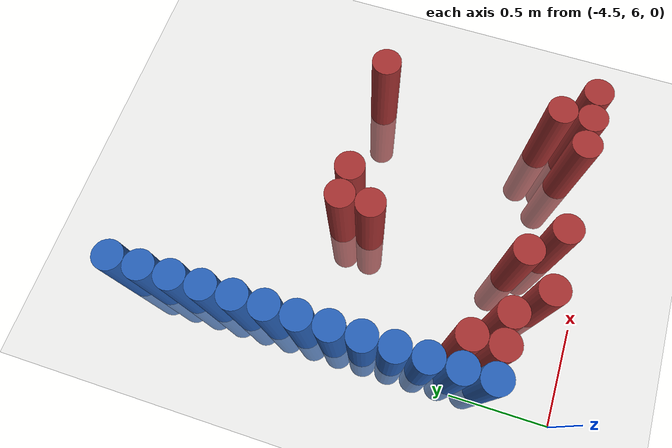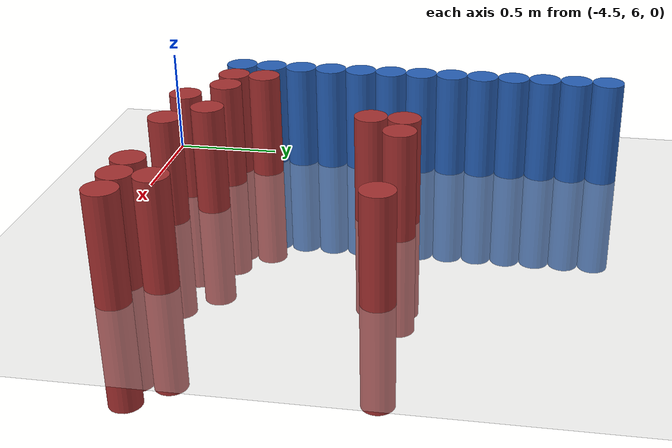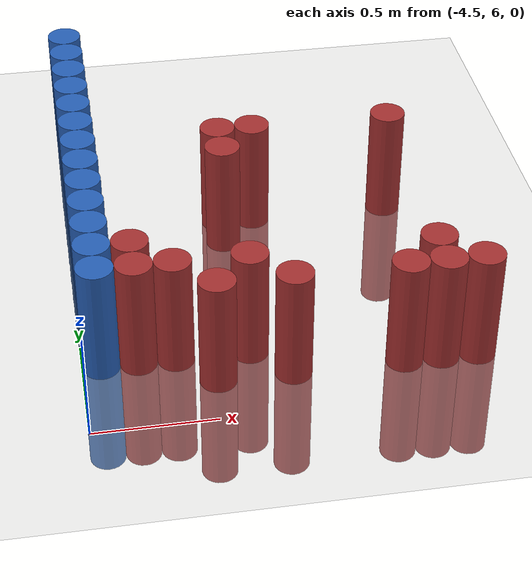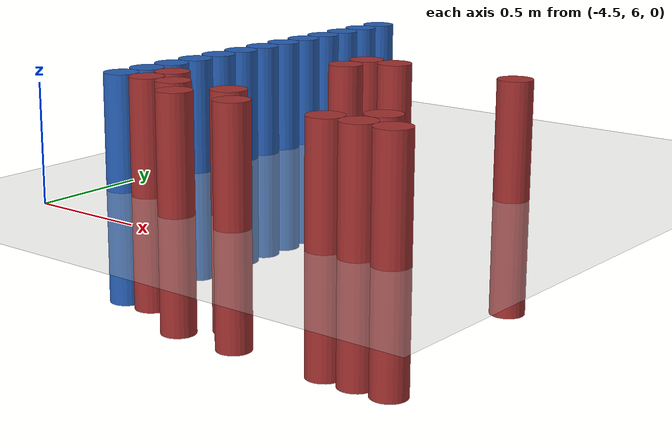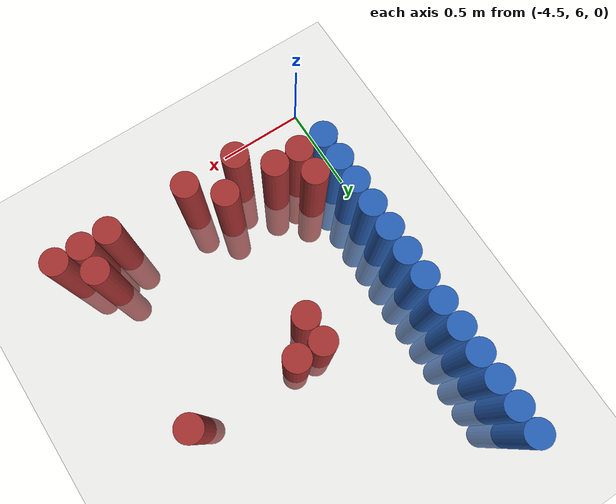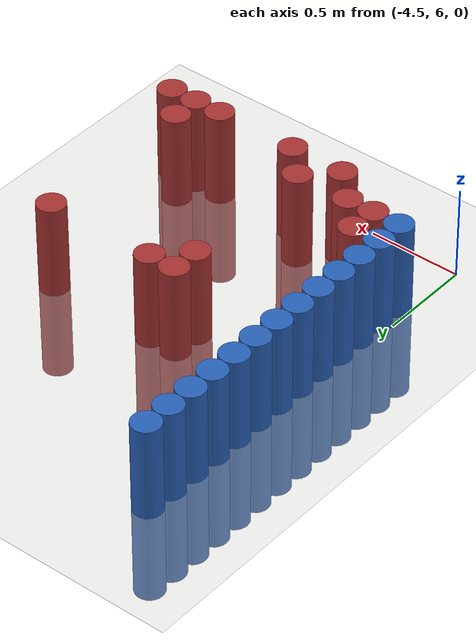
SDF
<sdf version="1.6">
 <world name="world_194">
  <model name="ground_plane">
   <static>1</static>
   <link name="link">
    <collision name="collision">
     <geometry><plane><normal>0 0 1</normal><size>100 100</size></plane></geometry>
     <surface><friction><ode><mu>100</mu><mu2>50</mu2></ode></friction></surface>
    </collision>
    <visual name="visual">
     <cast_shadows>0</cast_shadows>
     <geometry><plane><normal>0 0 1</normal><size>100 100</size></plane></geometry>
     <material>
      <script><uri>file://media/materials/scripts/gazebo.material</uri><name>Gazebo/Grey</name></script>
     </material>
    </visual>
   </link>
  </model>
  <model name="unit_cylinder_104">
   <static>1</static>
   <pose>-4.425000 6.375000 0.000000 0.000000 0.000000 0.000000</pose>
   <link name="link">
    <inertial>
     <mass>1</mass>
     <inertia><ixx>0.145833</ixx><ixy>0</ixy><ixz>0</ixz><iyy>0.145833</iyy><iyz>0</iyz><izz>0.125</izz></inertia>
    </inertial>
    <collision name="collision">
     <geometry><cylinder><radius>0.075000</radius><length>1</length></cylinder></geometry>
    </collision>
    <visual name="visual">
     <geometry><cylinder><radius>0.075000</radius><length>1</length></cylinder></geometry>
     <material>
      <ambient>0.152000 0.379000 0.720000 1</ambient>
      <diffuse>0.152000 0.379000 0.720000 1</diffuse>
     </material>
     <material>
      <script><name>Gazebo/Grey</name><uri>file://media/materials/scripts/gazebo.material</uri></script>
     </material>
    </visual>
   </link>
  </model>
  <model name="unit_cylinder_105">
   <static>1</static>
   <pose>-4.425000 6.525000 0.000000 0.000000 0.000000 0.000000</pose>
   <link name="link">
    <inertial>
     <mass>1</mass>
     <inertia><ixx>0.145833</ixx><ixy>0</ixy><ixz>0</ixz><iyy>0.145833</iyy><iyz>0</iyz><izz>0.125</izz></inertia>
    </inertial>
    <collision name="collision">
     <geometry><cylinder><radius>0.075000</radius><length>1</length></cylinder></geometry>
    </collision>
    <visual name="visual">
     <geometry><cylinder><radius>0.075000</radius><length>1</length></cylinder></geometry>
     <material>
      <ambient>0.152000 0.379000 0.720000 1</ambient>
      <diffuse>0.152000 0.379000 0.720000 1</diffuse>
     </material>
     <material>
      <script><name>Gazebo/Grey</name><uri>file://media/materials/scripts/gazebo.material</uri></script>
     </material>
    </visual>
   </link>
  </model>
  <model name="unit_cylinder_106">
   <static>1</static>
   <pose>-4.425000 6.675000 0.000000 0.000000 0.000000 0.000000</pose>
   <link name="link">
    <inertial>
     <mass>1</mass>
     <inertia><ixx>0.145833</ixx><ixy>0</ixy><ixz>0</ixz><iyy>0.145833</iyy><iyz>0</iyz><izz>0.125</izz></inertia>
    </inertial>
    <collision name="collision">
     <geometry><cylinder><radius>0.075000</radius><length>1</length></cylinder></geometry>
    </collision>
    <visual name="visual">
     <geometry><cylinder><radius>0.075000</radius><length>1</length></cylinder></geometry>
     <material>
      <ambient>0.152000 0.379000 0.720000 1</ambient>
      <diffuse>0.152000 0.379000 0.720000 1</diffuse>
     </material>
     <material>
      <script><name>Gazebo/Grey</name><uri>file://media/materials/scripts/gazebo.material</uri></script>
     </material>
    </visual>
   </link>
  </model>
  <model name="unit_cylinder_107">
   <static>1</static>
   <pose>-4.425000 6.825000 0.000000 0.000000 0.000000 0.000000</pose>
   <link name="link">
    <inertial>
     <mass>1</mass>
     <inertia><ixx>0.145833</ixx><ixy>0</ixy><ixz>0</ixz><iyy>0.145833</iyy><iyz>0</iyz><izz>0.125</izz></inertia>
    </inertial>
    <collision name="collision">
     <geometry><cylinder><radius>0.075000</radius><length>1</length></cylinder></geometry>
    </collision>
    <visual name="visual">
     <geometry><cylinder><radius>0.075000</radius><length>1</length></cylinder></geometry>
     <material>
      <ambient>0.152000 0.379000 0.720000 1</ambient>
      <diffuse>0.152000 0.379000 0.720000 1</diffuse>
     </material>
     <material>
      <script><name>Gazebo/Grey</name><uri>file://media/materials/scripts/gazebo.material</uri></script>
     </material>
    </visual>
   </link>
  </model>
  <model name="unit_cylinder_108">
   <static>1</static>
   <pose>-4.425000 6.975000 0.000000 0.000000 0.000000 0.000000</pose>
   <link name="link">
    <inertial>
     <mass>1</mass>
     <inertia><ixx>0.145833</ixx><ixy>0</ixy><ixz>0</ixz><iyy>0.145833</iyy><iyz>0</iyz><izz>0.125</izz></inertia>
    </inertial>
    <collision name="collision">
     <geometry><cylinder><radius>0.075000</radius><length>1</length></cylinder></geometry>
    </collision>
    <visual name="visual">
     <geometry><cylinder><radius>0.075000</radius><length>1</length></cylinder></geometry>
     <material>
      <ambient>0.152000 0.379000 0.720000 1</ambient>
      <diffuse>0.152000 0.379000 0.720000 1</diffuse>
     </material>
     <material>
      <script><name>Gazebo/Grey</name><uri>file://media/materials/scripts/gazebo.material</uri></script>
     </material>
    </visual>
   </link>
  </model>
  <model name="unit_cylinder_109">
   <static>1</static>
   <pose>-4.425000 7.125000 0.000000 0.000000 0.000000 0.000000</pose>
   <link name="link">
    <inertial>
     <mass>1</mass>
     <inertia><ixx>0.145833</ixx><ixy>0</ixy><ixz>0</ixz><iyy>0.145833</iyy><iyz>0</iyz><izz>0.125</izz></inertia>
    </inertial>
    <collision name="collision">
     <geometry><cylinder><radius>0.075000</radius><length>1</length></cylinder></geometry>
    </collision>
    <visual name="visual">
     <geometry><cylinder><radius>0.075000</radius><length>1</length></cylinder></geometry>
     <material>
      <ambient>0.152000 0.379000 0.720000 1</ambient>
      <diffuse>0.152000 0.379000 0.720000 1</diffuse>
     </material>
     <material>
      <script><name>Gazebo/Grey</name><uri>file://media/materials/scripts/gazebo.material</uri></script>
     </material>
    </visual>
   </link>
  </model>
  <model name="unit_cylinder_110">
   <static>1</static>
   <pose>-4.425000 7.275000 0.000000 0.000000 0.000000 0.000000</pose>
   <link name="link">
    <inertial>
     <mass>1</mass>
     <inertia><ixx>0.145833</ixx><ixy>0</ixy><ixz>0</ixz><iyy>0.145833</iyy><iyz>0</iyz><izz>0.125</izz></inertia>
    </inertial>
    <collision name="collision">
     <geometry><cylinder><radius>0.075000</radius><length>1</length></cylinder></geometry>
    </collision>
    <visual name="visual">
     <geometry><cylinder><radius>0.075000</radius><length>1</length></cylinder></geometry>
     <material>
      <ambient>0.152000 0.379000 0.720000 1</ambient>
      <diffuse>0.152000 0.379000 0.720000 1</diffuse>
     </material>
     <material>
      <script><name>Gazebo/Grey</name><uri>file://media/materials/scripts/gazebo.material</uri></script>
     </material>
    </visual>
   </link>
  </model>
  <model name="unit_cylinder_111">
   <static>1</static>
   <pose>-4.425000 7.425000 0.000000 0.000000 0.000000 0.000000</pose>
   <link name="link">
    <inertial>
     <mass>1</mass>
     <inertia><ixx>0.145833</ixx><ixy>0</ixy><ixz>0</ixz><iyy>0.145833</iyy><iyz>0</iyz><izz>0.125</izz></inertia>
    </inertial>
    <collision name="collision">
     <geometry><cylinder><radius>0.075000</radius><length>1</length></cylinder></geometry>
    </collision>
    <visual name="visual">
     <geometry><cylinder><radius>0.075000</radius><length>1</length></cylinder></geometry>
     <material>
      <ambient>0.152000 0.379000 0.720000 1</ambient>
      <diffuse>0.152000 0.379000 0.720000 1</diffuse>
     </material>
     <material>
      <script><name>Gazebo/Grey</name><uri>file://media/materials/scripts/gazebo.material</uri></script>
     </material>
    </visual>
   </link>
  </model>
  <model name="unit_cylinder_112">
   <static>1</static>
   <pose>-4.425000 7.575000 0.000000 0.000000 0.000000 0.000000</pose>
   <link name="link">
    <inertial>
     <mass>1</mass>
     <inertia><ixx>0.145833</ixx><ixy>0</ixy><ixz>0</ixz><iyy>0.145833</iyy><iyz>0</iyz><izz>0.125</izz></inertia>
    </inertial>
    <collision name="collision">
     <geometry><cylinder><radius>0.075000</radius><length>1</length></cylinder></geometry>
    </collision>
    <visual name="visual">
     <geometry><cylinder><radius>0.075000</radius><length>1</length></cylinder></geometry>
     <material>
      <ambient>0.152000 0.379000 0.720000 1</ambient>
      <diffuse>0.152000 0.379000 0.720000 1</diffuse>
     </material>
     <material>
      <script><name>Gazebo/Grey</name><uri>file://media/materials/scripts/gazebo.material</uri></script>
     </material>
    </visual>
   </link>
  </model>
  <model name="unit_cylinder_113">
   <static>1</static>
   <pose>-4.425000 7.725000 0.000000 0.000000 0.000000 0.000000</pose>
   <link name="link">
    <inertial>
     <mass>1</mass>
     <inertia><ixx>0.145833</ixx><ixy>0</ixy><ixz>0</ixz><iyy>0.145833</iyy><iyz>0</iyz><izz>0.125</izz></inertia>
    </inertial>
    <collision name="collision">
     <geometry><cylinder><radius>0.075000</radius><length>1</length></cylinder></geometry>
    </collision>
    <visual name="visual">
     <geometry><cylinder><radius>0.075000</radius><length>1</length></cylinder></geometry>
     <material>
      <ambient>0.152000 0.379000 0.720000 1</ambient>
      <diffuse>0.152000 0.379000 0.720000 1</diffuse>
     </material>
     <material>
      <script><name>Gazebo/Grey</name><uri>file://media/materials/scripts/gazebo.material</uri></script>
     </material>
    </visual>
   </link>
  </model>
  <model name="unit_cylinder_114">
   <static>1</static>
   <pose>-4.425000 7.875000 0.000000 0.000000 0.000000 0.000000</pose>
   <link name="link">
    <inertial>
     <mass>1</mass>
     <inertia><ixx>0.145833</ixx><ixy>0</ixy><ixz>0</ixz><iyy>0.145833</iyy><iyz>0</iyz><izz>0.125</izz></inertia>
    </inertial>
    <collision name="collision">
     <geometry><cylinder><radius>0.075000</radius><length>1</length></cylinder></geometry>
    </collision>
    <visual name="visual">
     <geometry><cylinder><radius>0.075000</radius><length>1</length></cylinder></geometry>
     <material>
      <ambient>0.152000 0.379000 0.720000 1</ambient>
      <diffuse>0.152000 0.379000 0.720000 1</diffuse>
     </material>
     <material>
      <script><name>Gazebo/Grey</name><uri>file://media/materials/scripts/gazebo.material</uri></script>
     </material>
    </visual>
   </link>
  </model>
  <model name="unit_cylinder_115">
   <static>1</static>
   <pose>-4.425000 8.025000 0.000000 0.000000 0.000000 0.000000</pose>
   <link name="link">
    <inertial>
     <mass>1</mass>
     <inertia><ixx>0.145833</ixx><ixy>0</ixy><ixz>0</ixz><iyy>0.145833</iyy><iyz>0</iyz><izz>0.125</izz></inertia>
    </inertial>
    <collision name="collision">
     <geometry><cylinder><radius>0.075000</radius><length>1</length></cylinder></geometry>
    </collision>
    <visual name="visual">
     <geometry><cylinder><radius>0.075000</radius><length>1</length></cylinder></geometry>
     <material>
      <ambient>0.152000 0.379000 0.720000 1</ambient>
      <diffuse>0.152000 0.379000 0.720000 1</diffuse>
     </material>
     <material>
      <script><name>Gazebo/Grey</name><uri>file://media/materials/scripts/gazebo.material</uri></script>
     </material>
    </visual>
   </link>
  </model>
  <model name="unit_cylinder_116">
   <static>1</static>
   <pose>-4.425000 8.175000 0.000000 0.000000 0.000000 0.000000</pose>
   <link name="link">
    <inertial>
     <mass>1</mass>
     <inertia><ixx>0.145833</ixx><ixy>0</ixy><ixz>0</ixz><iyy>0.145833</iyy><iyz>0</iyz><izz>0.125</izz></inertia>
    </inertial>
    <collision name="collision">
     <geometry><cylinder><radius>0.075000</radius><length>1</length></cylinder></geometry>
    </collision>
    <visual name="visual">
     <geometry><cylinder><radius>0.075000</radius><length>1</length></cylinder></geometry>
     <material>
      <ambient>0.152000 0.379000 0.720000 1</ambient>
      <diffuse>0.152000 0.379000 0.720000 1</diffuse>
     </material>
     <material>
      <script><name>Gazebo/Grey</name><uri>file://media/materials/scripts/gazebo.material</uri></script>
     </material>
    </visual>
   </link>
  </model>
  <model name="unit_cylinder_131">
   <static>1</static>
   <pose>-4.275000 6.375000 0.000000 0.000000 0.000000 0.000000</pose>
   <link name="link">
    <inertial>
     <mass>1</mass>
     <inertia><ixx>0.145833</ixx><ixy>0</ixy><ixz>0</ixz><iyy>0.145833</iyy><iyz>0</iyz><izz>0.125</izz></inertia>
    </inertial>
    <collision name="collision">
     <geometry><cylinder><radius>0.075000</radius><length>1</length></cylinder></geometry>
    </collision>
    <visual name="visual">
     <geometry><cylinder><radius>0.075000</radius><length>1</length></cylinder></geometry>
     <material>
      <ambient>0.648000 0.192000 0.192000 1</ambient>
      <diffuse>0.648000 0.192000 0.192000 1</diffuse>
     </material>
     <material>
      <script><name>Gazebo/Grey</name><uri>file://media/materials/scripts/gazebo.material</uri></script>
     </material>
    </visual>
   </link>
  </model>
  <model name="unit_cylinder_132">
   <static>1</static>
   <pose>-4.275000 6.525000 0.000000 0.000000 0.000000 0.000000</pose>
   <link name="link">
    <inertial>
     <mass>1</mass>
     <inertia><ixx>0.145833</ixx><ixy>0</ixy><ixz>0</ixz><iyy>0.145833</iyy><iyz>0</iyz><izz>0.125</izz></inertia>
    </inertial>
    <collision name="collision">
     <geometry><cylinder><radius>0.075000</radius><length>1</length></cylinder></geometry>
    </collision>
    <visual name="visual">
     <geometry><cylinder><radius>0.075000</radius><length>1</length></cylinder></geometry>
     <material>
      <ambient>0.648000 0.192000 0.192000 1</ambient>
      <diffuse>0.648000 0.192000 0.192000 1</diffuse>
     </material>
     <material>
      <script><name>Gazebo/Grey</name><uri>file://media/materials/scripts/gazebo.material</uri></script>
     </material>
    </visual>
   </link>
  </model>
  <model name="unit_cylinder_142">
   <static>1</static>
   <pose>-4.125000 6.375000 0.000000 0.000000 0.000000 0.000000</pose>
   <link name="link">
    <inertial>
     <mass>1</mass>
     <inertia><ixx>0.145833</ixx><ixy>0</ixy><ixz>0</ixz><iyy>0.145833</iyy><iyz>0</iyz><izz>0.125</izz></inertia>
    </inertial>
    <collision name="collision">
     <geometry><cylinder><radius>0.075000</radius><length>1</length></cylinder></geometry>
    </collision>
    <visual name="visual">
     <geometry><cylinder><radius>0.075000</radius><length>1</length></cylinder></geometry>
     <material>
      <ambient>0.648000 0.192000 0.192000 1</ambient>
      <diffuse>0.648000 0.192000 0.192000 1</diffuse>
     </material>
     <material>
      <script><name>Gazebo/Grey</name><uri>file://media/materials/scripts/gazebo.material</uri></script>
     </material>
    </visual>
   </link>
  </model>
  <model name="unit_cylinder_145">
   <static>1</static>
   <pose>-3.975000 6.225000 0.000000 0.000000 0.000000 0.000000</pose>
   <link name="link">
    <inertial>
     <mass>1</mass>
     <inertia><ixx>0.145833</ixx><ixy>0</ixy><ixz>0</ixz><iyy>0.145833</iyy><iyz>0</iyz><izz>0.125</izz></inertia>
    </inertial>
    <collision name="collision">
     <geometry><cylinder><radius>0.075000</radius><length>1</length></cylinder></geometry>
    </collision>
    <visual name="visual">
     <geometry><cylinder><radius>0.075000</radius><length>1</length></cylinder></geometry>
     <material>
      <ambient>0.648000 0.192000 0.192000 1</ambient>
      <diffuse>0.648000 0.192000 0.192000 1</diffuse>
     </material>
     <material>
      <script><name>Gazebo/Grey</name><uri>file://media/materials/scripts/gazebo.material</uri></script>
     </material>
    </visual>
   </link>
  </model>
  <model name="unit_cylinder_148">
   <static>1</static>
   <pose>-3.825000 6.375000 0.000000 0.000000 0.000000 0.000000</pose>
   <link name="link">
    <inertial>
     <mass>1</mass>
     <inertia><ixx>0.145833</ixx><ixy>0</ixy><ixz>0</ixz><iyy>0.145833</iyy><iyz>0</iyz><izz>0.125</izz></inertia>
    </inertial>
    <collision name="collision">
     <geometry><cylinder><radius>0.075000</radius><length>1</length></cylinder></geometry>
    </collision>
    <visual name="visual">
     <geometry><cylinder><radius>0.075000</radius><length>1</length></cylinder></geometry>
     <material>
      <ambient>0.648000 0.192000 0.192000 1</ambient>
      <diffuse>0.648000 0.192000 0.192000 1</diffuse>
     </material>
     <material>
      <script><name>Gazebo/Grey</name><uri>file://media/materials/scripts/gazebo.material</uri></script>
     </material>
    </visual>
   </link>
  </model>
  <model name="unit_cylinder_149">
   <static>1</static>
   <pose>-3.825000 7.125000 0.000000 0.000000 0.000000 0.000000</pose>
   <link name="link">
    <inertial>
     <mass>1</mass>
     <inertia><ixx>0.145833</ixx><ixy>0</ixy><ixz>0</ixz><iyy>0.145833</iyy><iyz>0</iyz><izz>0.125</izz></inertia>
    </inertial>
    <collision name="collision">
     <geometry><cylinder><radius>0.075000</radius><length>1</length></cylinder></geometry>
    </collision>
    <visual name="visual">
     <geometry><cylinder><radius>0.075000</radius><length>1</length></cylinder></geometry>
     <material>
      <ambient>0.648000 0.192000 0.192000 1</ambient>
      <diffuse>0.648000 0.192000 0.192000 1</diffuse>
     </material>
     <material>
      <script><name>Gazebo/Grey</name><uri>file://media/materials/scripts/gazebo.material</uri></script>
     </material>
    </visual>
   </link>
  </model>
  <model name="unit_cylinder_150">
   <static>1</static>
   <pose>-3.825000 7.275000 0.000000 0.000000 0.000000 0.000000</pose>
   <link name="link">
    <inertial>
     <mass>1</mass>
     <inertia><ixx>0.145833</ixx><ixy>0</ixy><ixz>0</ixz><iyy>0.145833</iyy><iyz>0</iyz><izz>0.125</izz></inertia>
    </inertial>
    <collision name="collision">
     <geometry><cylinder><radius>0.075000</radius><length>1</length></cylinder></geometry>
    </collision>
    <visual name="visual">
     <geometry><cylinder><radius>0.075000</radius><length>1</length></cylinder></geometry>
     <material>
      <ambient>0.648000 0.192000 0.192000 1</ambient>
      <diffuse>0.648000 0.192000 0.192000 1</diffuse>
     </material>
     <material>
      <script><name>Gazebo/Grey</name><uri>file://media/materials/scripts/gazebo.material</uri></script>
     </material>
    </visual>
   </link>
  </model>
  <model name="unit_cylinder_154">
   <static>1</static>
   <pose>-3.675000 6.225000 0.000000 0.000000 0.000000 0.000000</pose>
   <link name="link">
    <inertial>
     <mass>1</mass>
     <inertia><ixx>0.145833</ixx><ixy>0</ixy><ixz>0</ixz><iyy>0.145833</iyy><iyz>0</iyz><izz>0.125</izz></inertia>
    </inertial>
    <collision name="collision">
     <geometry><cylinder><radius>0.075000</radius><length>1</length></cylinder></geometry>
    </collision>
    <visual name="visual">
     <geometry><cylinder><radius>0.075000</radius><length>1</length></cylinder></geometry>
     <material>
      <ambient>0.648000 0.192000 0.192000 1</ambient>
      <diffuse>0.648000 0.192000 0.192000 1</diffuse>
     </material>
     <material>
      <script><name>Gazebo/Grey</name><uri>file://media/materials/scripts/gazebo.material</uri></script>
     </material>
    </visual>
   </link>
  </model>
  <model name="unit_cylinder_155">
   <static>1</static>
   <pose>-3.675000 7.275000 0.000000 0.000000 0.000000 0.000000</pose>
   <link name="link">
    <inertial>
     <mass>1</mass>
     <inertia><ixx>0.145833</ixx><ixy>0</ixy><ixz>0</ixz><iyy>0.145833</iyy><iyz>0</iyz><izz>0.125</izz></inertia>
    </inertial>
    <collision name="collision">
     <geometry><cylinder><radius>0.075000</radius><length>1</length></cylinder></geometry>
    </collision>
    <visual name="visual">
     <geometry><cylinder><radius>0.075000</radius><length>1</length></cylinder></geometry>
     <material>
      <ambient>0.648000 0.192000 0.192000 1</ambient>
      <diffuse>0.648000 0.192000 0.192000 1</diffuse>
     </material>
     <material>
      <script><name>Gazebo/Grey</name><uri>file://media/materials/scripts/gazebo.material</uri></script>
     </material>
    </visual>
   </link>
  </model>
  <model name="unit_cylinder_173">
   <static>1</static>
   <pose>-3.225000 6.225000 0.000000 0.000000 0.000000 0.000000</pose>
   <link name="link">
    <inertial>
     <mass>1</mass>
     <inertia><ixx>0.145833</ixx><ixy>0</ixy><ixz>0</ixz><iyy>0.145833</iyy><iyz>0</iyz><izz>0.125</izz></inertia>
    </inertial>
    <collision name="collision">
     <geometry><cylinder><radius>0.075000</radius><length>1</length></cylinder></geometry>
    </collision>
    <visual name="visual">
     <geometry><cylinder><radius>0.075000</radius><length>1</length></cylinder></geometry>
     <material>
      <ambient>0.648000 0.192000 0.192000 1</ambient>
      <diffuse>0.648000 0.192000 0.192000 1</diffuse>
     </material>
     <material>
      <script><name>Gazebo/Grey</name><uri>file://media/materials/scripts/gazebo.material</uri></script>
     </material>
    </visual>
   </link>
  </model>
  <model name="unit_cylinder_175">
   <static>1</static>
   <pose>-3.075000 6.225000 0.000000 0.000000 0.000000 0.000000</pose>
   <link name="link">
    <inertial>
     <mass>1</mass>
     <inertia><ixx>0.145833</ixx><ixy>0</ixy><ixz>0</ixz><iyy>0.145833</iyy><iyz>0</iyz><izz>0.125</izz></inertia>
    </inertial>
    <collision name="collision">
     <geometry><cylinder><radius>0.075000</radius><length>1</length></cylinder></geometry>
    </collision>
    <visual name="visual">
     <geometry><cylinder><radius>0.075000</radius><length>1</length></cylinder></geometry>
     <material>
      <ambient>0.648000 0.192000 0.192000 1</ambient>
      <diffuse>0.648000 0.192000 0.192000 1</diffuse>
     </material>
     <material>
      <script><name>Gazebo/Grey</name><uri>file://media/materials/scripts/gazebo.material</uri></script>
     </material>
    </visual>
   </link>
  </model>
  <model name="unit_cylinder_176">
   <static>1</static>
   <pose>-3.075000 6.375000 0.000000 0.000000 0.000000 0.000000</pose>
   <link name="link">
    <inertial>
     <mass>1</mass>
     <inertia><ixx>0.145833</ixx><ixy>0</ixy><ixz>0</ixz><iyy>0.145833</iyy><iyz>0</iyz><izz>0.125</izz></inertia>
    </inertial>
    <collision name="collision">
     <geometry><cylinder><radius>0.075000</radius><length>1</length></cylinder></geometry>
    </collision>
    <visual name="visual">
     <geometry><cylinder><radius>0.075000</radius><length>1</length></cylinder></geometry>
     <material>
      <ambient>0.648000 0.192000 0.192000 1</ambient>
      <diffuse>0.648000 0.192000 0.192000 1</diffuse>
     </material>
     <material>
      <script><name>Gazebo/Grey</name><uri>file://media/materials/scripts/gazebo.material</uri></script>
     </material>
    </visual>
   </link>
  </model>
  <model name="unit_cylinder_177">
   <static>1</static>
   <pose>-3.075000 7.275000 0.000000 0.000000 0.000000 0.000000</pose>
   <link name="link">
    <inertial>
     <mass>1</mass>
     <inertia><ixx>0.145833</ixx><ixy>0</ixy><ixz>0</ixz><iyy>0.145833</iyy><iyz>0</iyz><izz>0.125</izz></inertia>
    </inertial>
    <collision name="collision">
     <geometry><cylinder><radius>0.075000</radius><length>1</length></cylinder></geometry>
    </collision>
    <visual name="visual">
     <geometry><cylinder><radius>0.075000</radius><length>1</length></cylinder></geometry>
     <material>
      <ambient>0.648000 0.192000 0.192000 1</ambient>
      <diffuse>0.648000 0.192000 0.192000 1</diffuse>
     </material>
     <material>
      <script><name>Gazebo/Grey</name><uri>file://media/materials/scripts/gazebo.material</uri></script>
     </material>
    </visual>
   </link>
  </model>
  <model name="unit_cylinder_181">
   <static>1</static>
   <pose>-2.925000 6.225000 0.000000 0.000000 0.000000 0.000000</pose>
   <link name="link">
    <inertial>
     <mass>1</mass>
     <inertia><ixx>0.145833</ixx><ixy>0</ixy><ixz>0</ixz><iyy>0.145833</iyy><iyz>0</iyz><izz>0.125</izz></inertia>
    </inertial>
    <collision name="collision">
     <geometry><cylinder><radius>0.075000</radius><length>1</length></cylinder></geometry>
    </collision>
    <visual name="visual">
     <geometry><cylinder><radius>0.075000</radius><length>1</length></cylinder></geometry>
     <material>
      <ambient>0.648000 0.192000 0.192000 1</ambient>
      <diffuse>0.648000 0.192000 0.192000 1</diffuse>
     </material>
     <material>
      <script><name>Gazebo/Grey</name><uri>file://media/materials/scripts/gazebo.material</uri></script>
     </material>
    </visual>
   </link>
  </model>
 </world>
</sdf>
